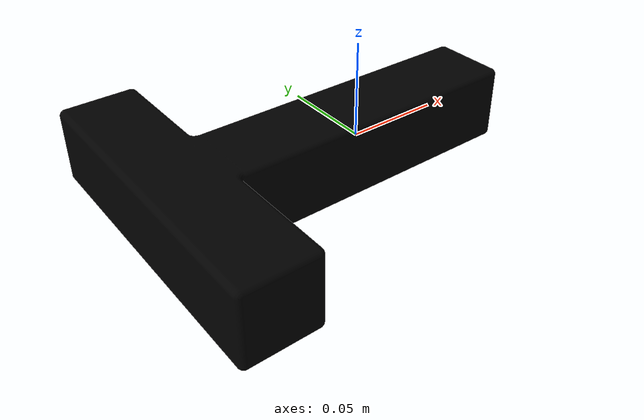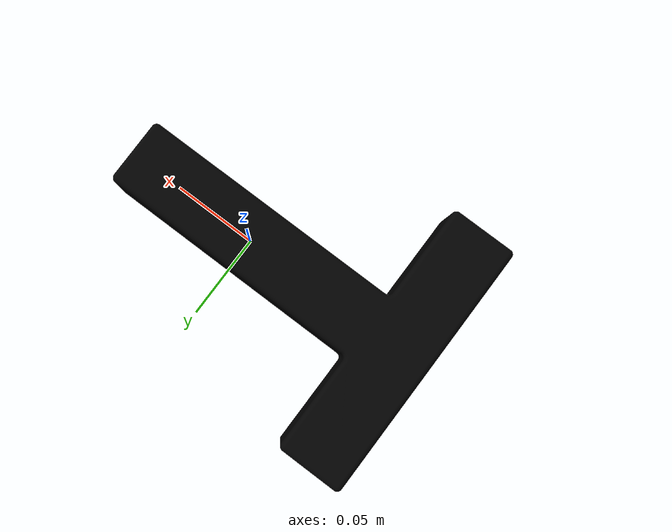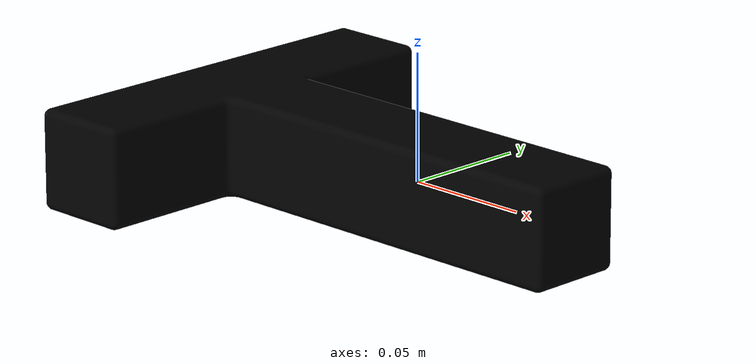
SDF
<?xml version="1.0"?>
<sdf version="1.7">
  <model name="t_shape">
    <link name="vertical_link">
      <inertial>
        <pose>-0.05 0 0 0 0 0</pose>
        <mass>1</mass>
        <!-- Inertia values were calculated to be consistent with the mass and
             geometry size, assuming a uniform density. -->
        <inertia>
            <ixx>0.003</ixx>
            <iyy>0.003 </iyy>
            <izz>0.007 </izz>
            <ixy>0.0</ixy>
            <ixz>0.0</ixz>
            <iyz>0.0</iyz>
        </inertia>
      </inertial>

      <visual name="vertical_link">
        <pose>0 0 0 0 0 0</pose>
        <geometry>
          <mesh>
            <uri>push_t_white.obj</uri>
          </mesh>
        </geometry>
        <material>
          <diffuse>0 0 0 1</diffuse>
        </material>
      </visual>
      <collision name="vertical_link_volume">
        <pose>0 0 0 0 0 0</pose>
            <geometry>
          <mesh>
            <uri>push_t_white.obj</uri>
          </mesh>
        </geometry>
        <drake:proximity_properties>
          <drake:rigid_hydroelastic/>
        </drake:proximity_properties>
      </collision>
      <collision name="corner_nxynz_">
        <geometry>
          <sphere>
            <radius>0.001</radius>
          </sphere>
        </geometry>
        <drake:proximity_properties>
          <drake:rigid_hydroelastic/>
          <drake:mesh_resolution_hint> 0.18 </drake:mesh_resolution_hint>
        </drake:proximity_properties>
        <pose> -0.12000000 0.08000000 -0.02000000 0 0 0</pose>
      </collision>
      <collision name="corner_nxnynz">
        <geometry>
          <sphere>
            <radius>0.001</radius>
          </sphere>
        </geometry>
        <drake:proximity_properties>
          <drake:rigid_hydroelastic/>
          <drake:mesh_resolution_hint> 0.18 </drake:mesh_resolution_hint>
        </drake:proximity_properties>
        <pose> -0.12000000 -0.08000000 -0.02000000 0 0 0</pose>
      </collision>
      <collision name="corner_xynz">
        <geometry>
          <sphere>
            <radius>0.001</radius>
          </sphere>
        </geometry>
        <drake:proximity_properties>
          <drake:rigid_hydroelastic/>
          <drake:mesh_resolution_hint> 0.18 </drake:mesh_resolution_hint>
        </drake:proximity_properties>
        <pose> 0.08000000 0.00000000 -0.02000000 0 0 0</pose>
      </collision>
    </link>
  </model>
</sdf>
